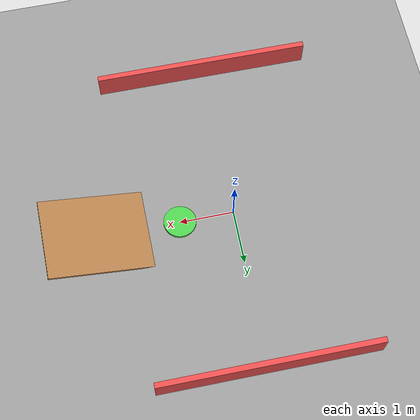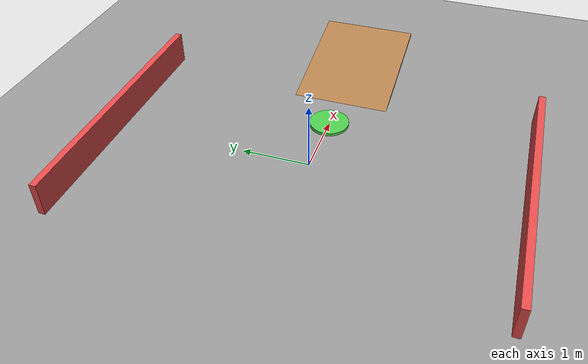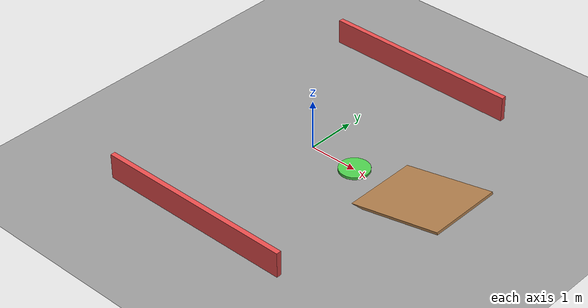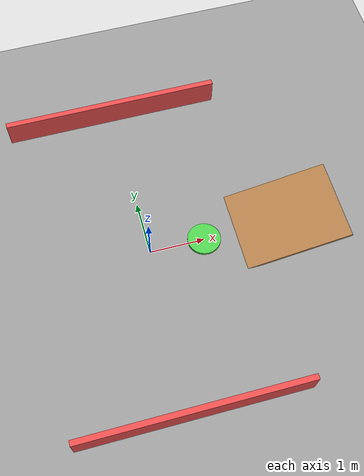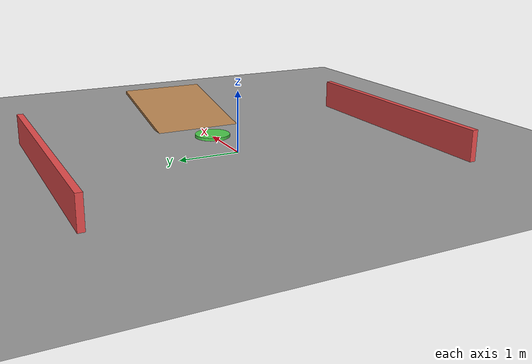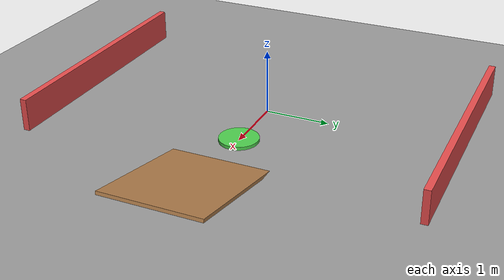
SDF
<?xml version="1.0"?>
<sdf version="1.8">
  <world name="imu_world">

    <!-- ========== SYSTEM PLUGINS ========== -->
    <plugin filename="gz-sim-physics-system"
            name="gz::sim::systems::Physics"/>
    <plugin filename="gz-sim-imu-system"
            name="gz::sim::systems::Imu"/>
    <plugin filename="gz-sim-scene-broadcaster-system"
            name="gz::sim::systems::SceneBroadcaster"/>
    <plugin filename="gz-sim-user-commands-system"
            name="gz::sim::systems::UserCommands"/>

    <!-- ========== PHYSICS ========== -->
    <physics name="default_physics" type="ode">
      <max_step_size>0.001</max_step_size>
      <real_time_factor>1.0</real_time_factor>
      <real_time_update_rate>1000</real_time_update_rate>
    </physics>

    <!-- ========== LIGHTING ========== -->
    <light name="sun" type="directional">
      <cast_shadows>true</cast_shadows>
      <pose>0 0 10 0 0 0</pose>
      <diffuse>0.9 0.9 0.9 1</diffuse>
      <specular>0.3 0.3 0.3 1</specular>
      <direction>-0.5 0.1 -0.9</direction>
    </light>

    <!-- ========== GROUND PLANE ========== -->
    <model name="ground_plane">
      <static>true</static>
      <link name="link">
        <collision name="collision">
          <geometry>
            <plane>
              <normal>0 0 1</normal>
              <size>20 20</size>
            </plane>
          </geometry>
          <surface>
            <friction>
              <ode>
                <mu>1.0</mu>
                <mu2>1.0</mu2>
              </ode>
            </friction>
          </surface>
        </collision>
        <visual name="visual">
          <geometry>
            <plane>
              <normal>0 0 1</normal>
              <size>20 20</size>
            </plane>
          </geometry>
          <material>
            <ambient>0.3 0.3 0.3 1</ambient>
            <diffuse>0.6 0.6 0.6 1</diffuse>
          </material>
        </visual>
      </link>
    </model>

    <!-- ========== BUMP ========== -->
    <model name="bump">
      <static>true</static>
      <pose>1.0 0 0.025 0 0 0</pose>
      <link name="link">
        <collision name="collision">
          <geometry>
            <cylinder>
              <radius>0.3</radius>
              <length>0.05</length>
            </cylinder>
          </geometry>
        </collision>
        <visual name="visual">
          <geometry>
            <cylinder>
              <radius>0.3</radius>
              <length>0.05</length>
            </cylinder>
          </geometry>
          <material>
            <ambient>0.2 0.7 0.2 1</ambient>
            <diffuse>0.3 0.8 0.3 1</diffuse>
          </material>
        </visual>
      </link>
    </model>

    <!-- ========== RAMP ========== -->
    <model name="ramp">
      <static>true</static>
      <pose>2.5 0 0.15 0 -0.2 0</pose>
      <link name="link">
        <collision name="collision">
          <geometry>
            <box>
              <size>2.0 1.5 0.05</size>
            </box>
          </geometry>
        </collision>
        <visual name="visual">
          <geometry>
            <box>
              <size>2.0 1.5 0.05</size>
            </box>
          </geometry>
          <material>
            <ambient>0.6 0.4 0.2 1</ambient>
            <diffuse>0.7 0.5 0.3 1</diffuse>
          </material>
        </visual>
      </link>
    </model>

    <!-- ========== WALL 1 ========== -->
    <model name="wall_1">
      <static>true</static>
      <pose>0 3 0.25 0 0 0</pose>
      <link name="link">
        <collision name="collision">
          <geometry>
            <box><size>4.0 0.1 0.5</size></box>
          </geometry>
        </collision>
        <visual name="visual">
          <geometry>
            <box><size>4.0 0.1 0.5</size></box>
          </geometry>
          <material>
            <ambient>0.8 0.2 0.2 1</ambient>
            <diffuse>0.9 0.3 0.3 1</diffuse>
          </material>
        </visual>
      </link>
    </model>

    <!-- ========== WALL 2 ========== -->
    <model name="wall_2">
      <static>true</static>
      <pose>0 -3 0.25 0 0 0</pose>
      <link name="link">
        <collision name="collision">
          <geometry>
            <box><size>4.0 0.1 0.5</size></box>
          </geometry>
        </collision>
        <visual name="visual">
          <geometry>
            <box><size>4.0 0.1 0.5</size></box>
          </geometry>
          <material>
            <ambient>0.8 0.2 0.2 1</ambient>
            <diffuse>0.9 0.3 0.3 1</diffuse>
          </material>
        </visual>
      </link>
    </model>

  </world>
</sdf>
